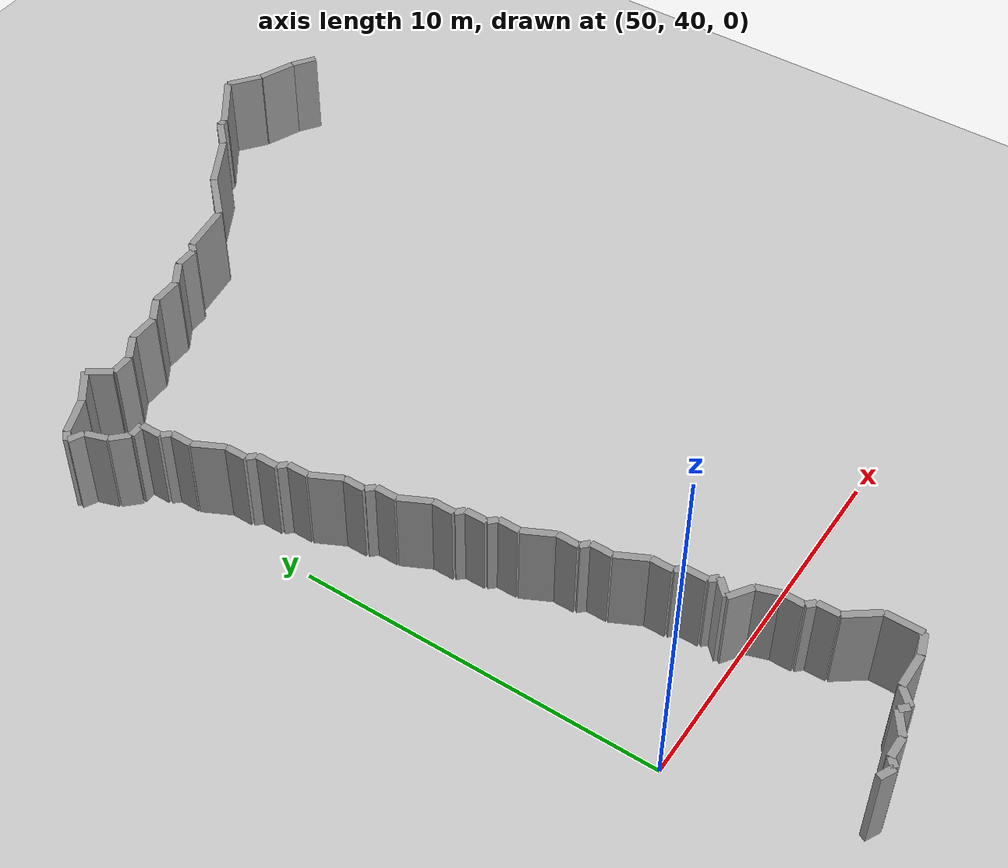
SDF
<sdf version="1.4">
 <world name="1_wall">
  <model name="ground_plane">
   <static>1</static>
   <link name="link">
    <collision name="collision">
     <geometry><plane><normal>0 0 1</normal><size>1000 1000</size></plane></geometry>
     <surface><friction><ode><mu>100</mu><mu2>50</mu2></ode></friction></surface>
    </collision>
    <visual name="visual">
     <cast_shadows>0</cast_shadows>
     <geometry><plane><normal>0 0 1</normal><size>10000 10000</size></plane></geometry>
     <material>
      <script><uri>file://media/materials/scripts/gazebo.material</uri><name>Gazebo/Grey</name></script>
     </material>
    </visual>
    <velocity_decay><linear>0</linear><angular>0</angular></velocity_decay>
   </link>
  </model>
  <model name="Wall_208">
   <static>1</static>
   <link name="Wall_208">
    <collision name="Wall_Collision_208">
     <geometry><box><size>0.721110255093 0.2 2.5</size></box></geometry>
     <pose>0 0 1.25 0 -0 0</pose>
    </collision>
    <visual name="Wall_Visual_208">
     <pose>0 0 1.25 0 -0 0</pose>
     <geometry><box><size>0.721110255093 0.2 2.5</size></box></geometry>
     <material>
      <script><uri>file://media/materials/scripts/gazebo.material</uri><name>Gazebo/Grey</name></script>
     </material>
    </visual>
    <velocity_decay><linear>0</linear><angular>0</angular></velocity_decay>
    <pose>63.9 60.6 0 0 0 2.55359005004</pose>
   </link>
  </model>
  <model name="Wall_209">
   <static>1</static>
   <link name="Wall_209">
    <collision name="Wall_Collision_209">
     <geometry><box><size>1.07703296143 0.2 2.5</size></box></geometry>
     <pose>0 0 1.25 0 -0 0</pose>
    </collision>
    <visual name="Wall_Visual_209">
     <pose>0 0 1.25 0 -0 0</pose>
     <geometry><box><size>1.07703296143 0.2 2.5</size></box></geometry>
     <material>
      <script><uri>file://media/materials/scripts/gazebo.material</uri><name>Gazebo/Grey</name></script>
     </material>
    </visual>
    <velocity_decay><linear>0</linear><angular>0</angular></velocity_decay>
    <pose>63.1 61.0 0 0 0 2.76108627648</pose>
   </link>
  </model>
  <model name="Wall_210">
   <static>1</static>
   <link name="Wall_210">
    <collision name="Wall_Collision_210">
     <geometry><box><size>1.0 0.2 2.5</size></box></geometry>
     <pose>0 0 1.25 0 -0 0</pose>
    </collision>
    <visual name="Wall_Visual_210">
     <pose>0 0 1.25 0 -0 0</pose>
     <geometry><box><size>1.0 0.2 2.5</size></box></geometry>
     <material>
      <script><uri>file://media/materials/scripts/gazebo.material</uri><name>Gazebo/Grey</name></script>
     </material>
    </visual>
    <velocity_decay><linear>0</linear><angular>0</angular></velocity_decay>
    <pose>62.2 61.5 0 0 0 2.4980915448</pose>
   </link>
  </model>
  <model name="Wall_211">
   <static>1</static>
   <link name="Wall_211">
    <collision name="Wall_Collision_211">
     <geometry><box><size>1.72046505341 0.2 2.5</size></box></geometry>
     <pose>0 0 1.25 0 -0 0</pose>
    </collision>
    <visual name="Wall_Visual_211">
     <pose>0 0 1.25 0 -0 0</pose>
     <geometry><box><size>1.72046505341 0.2 2.5</size></box></geometry>
     <material>
      <script><uri>file://media/materials/scripts/gazebo.material</uri><name>Gazebo/Grey</name></script>
     </material>
    </visual>
    <velocity_decay><linear>0</linear><angular>0</angular></velocity_decay>
    <pose>61.1 61.3 0 0 0 -2.52134316761</pose>
   </link>
  </model>
  <model name="Wall_212">
   <static>1</static>
   <link name="Wall_212">
    <collision name="Wall_Collision_212">
     <geometry><box><size>0.2 0.2 2.5</size></box></geometry>
     <pose>0 0 1.25 0 -0 0</pose>
    </collision>
    <visual name="Wall_Visual_212">
     <pose>0 0 1.25 0 -0 0</pose>
     <geometry><box><size>0.2 0.2 2.5</size></box></geometry>
     <material>
      <script><uri>file://media/materials/scripts/gazebo.material</uri><name>Gazebo/Grey</name></script>
     </material>
    </visual>
    <velocity_decay><linear>0</linear><angular>0</angular></velocity_decay>
    <pose>60.3 60.8 0 0 0 3.14159265359</pose>
   </link>
  </model>
  <model name="Wall_213">
   <static>1</static>
   <link name="Wall_213">
    <collision name="Wall_Collision_213">
     <geometry><box><size>0.848528137424 0.2 2.5</size></box></geometry>
     <pose>0 0 1.25 0 -0 0</pose>
    </collision>
    <visual name="Wall_Visual_213">
     <pose>0 0 1.25 0 -0 0</pose>
     <geometry><box><size>0.848528137424 0.2 2.5</size></box></geometry>
     <material>
      <script><uri>file://media/materials/scripts/gazebo.material</uri><name>Gazebo/Grey</name></script>
     </material>
    </visual>
    <velocity_decay><linear>0</linear><angular>0</angular></velocity_decay>
    <pose>59.9 60.5 0 0 0 -2.35619449019</pose>
   </link>
  </model>
  <model name="Wall_214">
   <static>1</static>
   <link name="Wall_214">
    <collision name="Wall_Collision_214">
     <geometry><box><size>1.61245154966 0.2 2.5</size></box></geometry>
     <pose>0 0 1.25 0 -0 0</pose>
    </collision>
    <visual name="Wall_Visual_214">
     <pose>0 0 1.25 0 -0 0</pose>
     <geometry><box><size>1.61245154966 0.2 2.5</size></box></geometry>
     <material>
      <script><uri>file://media/materials/scripts/gazebo.material</uri><name>Gazebo/Grey</name></script>
     </material>
    </visual>
    <velocity_decay><linear>0</linear><angular>0</angular></velocity_decay>
    <pose>58.9 59.8 0 0 0 -2.62244653934</pose>
   </link>
  </model>
  <model name="Wall_215">
   <static>1</static>
   <link name="Wall_215">
    <collision name="Wall_Collision_215">
     <geometry><box><size>1.41421356237 0.2 2.5</size></box></geometry>
     <pose>0 0 1.25 0 -0 0</pose>
    </collision>
    <visual name="Wall_Visual_215">
     <pose>0 0 1.25 0 -0 0</pose>
     <geometry><box><size>1.41421356237 0.2 2.5</size></box></geometry>
     <material>
      <script><uri>file://media/materials/scripts/gazebo.material</uri><name>Gazebo/Grey</name></script>
     </material>
    </visual>
    <velocity_decay><linear>0</linear><angular>0</angular></velocity_decay>
    <pose>57.7 58.9 0 0 0 -2.35619449019</pose>
   </link>
  </model>
  <model name="Wall_216">
   <static>1</static>
   <link name="Wall_216">
    <collision name="Wall_Collision_216">
     <geometry><box><size>1.41421356237 0.2 2.5</size></box></geometry>
     <pose>0 0 1.25 0 -0 0</pose>
    </collision>
    <visual name="Wall_Visual_216">
     <pose>0 0 1.25 0 -0 0</pose>
     <geometry><box><size>1.41421356237 0.2 2.5</size></box></geometry>
     <material>
      <script><uri>file://media/materials/scripts/gazebo.material</uri><name>Gazebo/Grey</name></script>
     </material>
    </visual>
    <velocity_decay><linear>0</linear><angular>0</angular></velocity_decay>
    <pose>56.5 58.3 0 0 0 -2.99969559899</pose>
   </link>
  </model>
  <model name="Wall_217">
   <static>1</static>
   <link name="Wall_217">
    <collision name="Wall_Collision_217">
     <geometry><box><size>0.282842712475 0.2 2.5</size></box></geometry>
     <pose>0 0 1.25 0 -0 0</pose>
    </collision>
    <visual name="Wall_Visual_217">
     <pose>0 0 1.25 0 -0 0</pose>
     <geometry><box><size>0.282842712475 0.2 2.5</size></box></geometry>
     <material>
      <script><uri>file://media/materials/scripts/gazebo.material</uri><name>Gazebo/Grey</name></script>
     </material>
    </visual>
    <velocity_decay><linear>0</linear><angular>0</angular></velocity_decay>
    <pose>55.7 58.1 0 0 0 -2.35619449019</pose>
   </link>
  </model>
  <model name="Wall_218">
   <static>1</static>
   <link name="Wall_218">
    <collision name="Wall_Collision_218">
     <geometry><box><size>0.6 0.2 2.5</size></box></geometry>
     <pose>0 0 1.25 0 -0 0</pose>
    </collision>
    <visual name="Wall_Visual_218">
     <pose>0 0 1.25 0 -0 0</pose>
     <geometry><box><size>0.6 0.2 2.5</size></box></geometry>
     <material>
      <script><uri>file://media/materials/scripts/gazebo.material</uri><name>Gazebo/Grey</name></script>
     </material>
    </visual>
    <velocity_decay><linear>0</linear><angular>0</angular></velocity_decay>
    <pose>55.3 58.0 0 0 0 3.14159265359</pose>
   </link>
  </model>
  <model name="Wall_219">
   <static>1</static>
   <link name="Wall_219">
    <collision name="Wall_Collision_219">
     <geometry><box><size>0.721110255093 0.2 2.5</size></box></geometry>
     <pose>0 0 1.25 0 -0 0</pose>
    </collision>
    <visual name="Wall_Visual_219">
     <pose>0 0 1.25 0 -0 0</pose>
     <geometry><box><size>0.721110255093 0.2 2.5</size></box></geometry>
     <material>
      <script><uri>file://media/materials/scripts/gazebo.material</uri><name>Gazebo/Grey</name></script>
     </material>
    </visual>
    <velocity_decay><linear>0</linear><angular>0</angular></velocity_decay>
    <pose>54.7 57.8 0 0 0 -2.55359005004</pose>
   </link>
  </model>
  <model name="Wall_220">
   <static>1</static>
   <link name="Wall_220">
    <collision name="Wall_Collision_220">
     <geometry><box><size>0.8 0.2 2.5</size></box></geometry>
     <pose>0 0 1.25 0 -0 0</pose>
    </collision>
    <visual name="Wall_Visual_220">
     <pose>0 0 1.25 0 -0 0</pose>
     <geometry><box><size>0.8 0.2 2.5</size></box></geometry>
     <material>
      <script><uri>file://media/materials/scripts/gazebo.material</uri><name>Gazebo/Grey</name></script>
     </material>
    </visual>
    <velocity_decay><linear>0</linear><angular>0</angular></velocity_decay>
    <pose>54.0 57.6 0 0 0 3.14159265359</pose>
   </link>
  </model>
  <model name="Wall_221">
   <static>1</static>
   <link name="Wall_221">
    <collision name="Wall_Collision_221">
     <geometry><box><size>0.721110255093 0.2 2.5</size></box></geometry>
     <pose>0 0 1.25 0 -0 0</pose>
    </collision>
    <visual name="Wall_Visual_221">
     <pose>0 0 1.25 0 -0 0</pose>
     <geometry><box><size>0.721110255093 0.2 2.5</size></box></geometry>
     <material>
      <script><uri>file://media/materials/scripts/gazebo.material</uri><name>Gazebo/Grey</name></script>
     </material>
    </visual>
    <velocity_decay><linear>0</linear><angular>0</angular></velocity_decay>
    <pose>53.3 57.4 0 0 0 -2.55359005004</pose>
   </link>
  </model>
  <model name="Wall_222">
   <static>1</static>
   <link name="Wall_222">
    <collision name="Wall_Collision_222">
     <geometry><box><size>0.8 0.2 2.5</size></box></geometry>
     <pose>0 0 1.25 0 -0 0</pose>
    </collision>
    <visual name="Wall_Visual_222">
     <pose>0 0 1.25 0 -0 0</pose>
     <geometry><box><size>0.8 0.2 2.5</size></box></geometry>
     <material>
      <script><uri>file://media/materials/scripts/gazebo.material</uri><name>Gazebo/Grey</name></script>
     </material>
    </visual>
    <velocity_decay><linear>0</linear><angular>0</angular></velocity_decay>
    <pose>52.6 57.2 0 0 0 3.14159265359</pose>
   </link>
  </model>
  <model name="Wall_223">
   <static>1</static>
   <link name="Wall_223">
    <collision name="Wall_Collision_223">
     <geometry><box><size>0.721110255093 0.2 2.5</size></box></geometry>
     <pose>0 0 1.25 0 -0 0</pose>
    </collision>
    <visual name="Wall_Visual_223">
     <pose>0 0 1.25 0 -0 0</pose>
     <geometry><box><size>0.721110255093 0.2 2.5</size></box></geometry>
     <material>
      <script><uri>file://media/materials/scripts/gazebo.material</uri><name>Gazebo/Grey</name></script>
     </material>
    </visual>
    <velocity_decay><linear>0</linear><angular>0</angular></velocity_decay>
    <pose>51.9 57.0 0 0 0 -2.55359005004</pose>
   </link>
  </model>
  <model name="Wall_224">
   <static>1</static>
   <link name="Wall_224">
    <collision name="Wall_Collision_224">
     <geometry><box><size>0.6 0.2 2.5</size></box></geometry>
     <pose>0 0 1.25 0 -0 0</pose>
    </collision>
    <visual name="Wall_Visual_224">
     <pose>0 0 1.25 0 -0 0</pose>
     <geometry><box><size>0.6 0.2 2.5</size></box></geometry>
     <material>
      <script><uri>file://media/materials/scripts/gazebo.material</uri><name>Gazebo/Grey</name></script>
     </material>
    </visual>
    <velocity_decay><linear>0</linear><angular>0</angular></velocity_decay>
    <pose>51.3 56.8 0 0 0 3.14159265359</pose>
   </link>
  </model>
  <model name="Wall_225">
   <static>1</static>
   <link name="Wall_225">
    <collision name="Wall_Collision_225">
     <geometry><box><size>0.721110255093 0.2 2.5</size></box></geometry>
     <pose>0 0 1.25 0 -0 0</pose>
    </collision>
    <visual name="Wall_Visual_225">
     <pose>0 0 1.25 0 -0 0</pose>
     <geometry><box><size>0.721110255093 0.2 2.5</size></box></geometry>
     <material>
      <script><uri>file://media/materials/scripts/gazebo.material</uri><name>Gazebo/Grey</name></script>
     </material>
    </visual>
    <velocity_decay><linear>0</linear><angular>0</angular></velocity_decay>
    <pose>50.8 57.1 0 0 0 2.15879893034</pose>
   </link>
  </model>
  <model name="Wall_226">
   <static>1</static>
   <link name="Wall_226">
    <collision name="Wall_Collision_226">
     <geometry><box><size>1.0 0.2 2.5</size></box></geometry>
     <pose>0 0 1.25 0 -0 0</pose>
    </collision>
    <visual name="Wall_Visual_226">
     <pose>0 0 1.25 0 -0 0</pose>
     <geometry><box><size>1.0 0.2 2.5</size></box></geometry>
     <material>
      <script><uri>file://media/materials/scripts/gazebo.material</uri><name>Gazebo/Grey</name></script>
     </material>
    </visual>
    <velocity_decay><linear>0</linear><angular>0</angular></velocity_decay>
    <pose>50.2 57.1 0 0 0 -2.4980915448</pose>
   </link>
  </model>
  <model name="Wall_227">
   <static>1</static>
   <link name="Wall_227">
    <collision name="Wall_Collision_227">
     <geometry><box><size>1.07703296143 0.2 2.5</size></box></geometry>
     <pose>0 0 1.25 0 -0 0</pose>
    </collision>
    <visual name="Wall_Visual_227">
     <pose>0 0 1.25 0 -0 0</pose>
     <geometry><box><size>1.07703296143 0.2 2.5</size></box></geometry>
     <material>
      <script><uri>file://media/materials/scripts/gazebo.material</uri><name>Gazebo/Grey</name></script>
     </material>
    </visual>
    <velocity_decay><linear>0</linear><angular>0</angular></velocity_decay>
    <pose>49.3 56.6 0 0 0 -2.76108627648</pose>
   </link>
  </model>
  <model name="Wall_228">
   <static>1</static>
   <link name="Wall_228">
    <collision name="Wall_Collision_228">
     <geometry><box><size>0.282842712475 0.2 2.5</size></box></geometry>
     <pose>0 0 1.25 0 -0 0</pose>
    </collision>
    <visual name="Wall_Visual_228">
     <pose>0 0 1.25 0 -0 0</pose>
     <geometry><box><size>0.282842712475 0.2 2.5</size></box></geometry>
     <material>
      <script><uri>file://media/materials/scripts/gazebo.material</uri><name>Gazebo/Grey</name></script>
     </material>
    </visual>
    <velocity_decay><linear>0</linear><angular>0</angular></velocity_decay>
    <pose>48.7 56.3 0 0 0 -2.35619449019</pose>
   </link>
  </model>
  <model name="Wall_229">
   <static>1</static>
   <link name="Wall_229">
    <collision name="Wall_Collision_229">
     <geometry><box><size>0.4472135955 0.2 2.5</size></box></geometry>
     <pose>0 0 1.25 0 -0 0</pose>
    </collision>
    <visual name="Wall_Visual_229">
     <pose>0 0 1.25 0 -0 0</pose>
     <geometry><box><size>0.4472135955 0.2 2.5</size></box></geometry>
     <material>
      <script><uri>file://media/materials/scripts/gazebo.material</uri><name>Gazebo/Grey</name></script>
     </material>
    </visual>
    <velocity_decay><linear>0</linear><angular>0</angular></velocity_decay>
    <pose>48.8 56.1 0 0 0 -0.463647609001</pose>
   </link>
  </model>
  <model name="Wall_230">
   <static>1</static>
   <link name="Wall_230">
    <collision name="Wall_Collision_230">
     <geometry><box><size>0.632455532034 0.2 2.5</size></box></geometry>
     <pose>0 0 1.25 0 -0 0</pose>
    </collision>
    <visual name="Wall_Visual_230">
     <pose>0 0 1.25 0 -0 0</pose>
     <geometry><box><size>0.632455532034 0.2 2.5</size></box></geometry>
     <material>
      <script><uri>file://media/materials/scripts/gazebo.material</uri><name>Gazebo/Grey</name></script>
     </material>
    </visual>
    <velocity_decay><linear>0</linear><angular>0</angular></velocity_decay>
    <pose>49.1 55.7 0 0 0 -1.2490457724</pose>
   </link>
  </model>
  <model name="Wall_231">
   <static>1</static>
   <link name="Wall_231">
    <collision name="Wall_Collision_231">
     <geometry><box><size>0.565685424949 0.2 2.5</size></box></geometry>
     <pose>0 0 1.25 0 -0 0</pose>
    </collision>
    <visual name="Wall_Visual_231">
     <pose>0 0 1.25 0 -0 0</pose>
     <geometry><box><size>0.565685424949 0.2 2.5</size></box></geometry>
     <material>
      <script><uri>file://media/materials/scripts/gazebo.material</uri><name>Gazebo/Grey</name></script>
     </material>
    </visual>
    <velocity_decay><linear>0</linear><angular>0</angular></velocity_decay>
    <pose>49.4 55.2 0 0 0 -0.785398163397</pose>
   </link>
  </model>
  <model name="Wall_232">
   <static>1</static>
   <link name="Wall_232">
    <collision name="Wall_Collision_232">
     <geometry><box><size>0.4 0.2 2.5</size></box></geometry>
     <pose>0 0 1.25 0 -0 0</pose>
    </collision>
    <visual name="Wall_Visual_232">
     <pose>0 0 1.25 0 -0 0</pose>
     <geometry><box><size>0.4 0.2 2.5</size></box></geometry>
     <material>
      <script><uri>file://media/materials/scripts/gazebo.material</uri><name>Gazebo/Grey</name></script>
     </material>
    </visual>
    <velocity_decay><linear>0</linear><angular>0</angular></velocity_decay>
    <pose>49.8 55.0 0 0 0 0.0</pose>
   </link>
  </model>
  <model name="Wall_233">
   <static>1</static>
   <link name="Wall_233">
    <collision name="Wall_Collision_233">
     <geometry><box><size>0.6 0.2 2.5</size></box></geometry>
     <pose>0 0 1.25 0 -0 0</pose>
    </collision>
    <visual name="Wall_Visual_233">
     <pose>0 0 1.25 0 -0 0</pose>
     <geometry><box><size>0.6 0.2 2.5</size></box></geometry>
     <material>
      <script><uri>file://media/materials/scripts/gazebo.material</uri><name>Gazebo/Grey</name></script>
     </material>
    </visual>
    <velocity_decay><linear>0</linear><angular>0</angular></velocity_decay>
    <pose>50.0 54.7 0 0 0 -1.57079632679</pose>
   </link>
  </model>
  <model name="Wall_234">
   <static>1</static>
   <link name="Wall_234">
    <collision name="Wall_Collision_234">
     <geometry><box><size>0.282842712475 0.2 2.5</size></box></geometry>
     <pose>0 0 1.25 0 -0 0</pose>
    </collision>
    <visual name="Wall_Visual_234">
     <pose>0 0 1.25 0 -0 0</pose>
     <geometry><box><size>0.282842712475 0.2 2.5</size></box></geometry>
     <material>
      <script><uri>file://media/materials/scripts/gazebo.material</uri><name>Gazebo/Grey</name></script>
     </material>
    </visual>
    <velocity_decay><linear>0</linear><angular>0</angular></velocity_decay>
    <pose>50.1 54.3 0 0 0 -0.785398163397</pose>
   </link>
  </model>
  <model name="Wall_235">
   <static>1</static>
   <link name="Wall_235">
    <collision name="Wall_Collision_235">
     <geometry><box><size>0.6 0.2 2.5</size></box></geometry>
     <pose>0 0 1.25 0 -0 0</pose>
    </collision>
    <visual name="Wall_Visual_235">
     <pose>0 0 1.25 0 -0 0</pose>
     <geometry><box><size>0.6 0.2 2.5</size></box></geometry>
     <material>
      <script><uri>file://media/materials/scripts/gazebo.material</uri><name>Gazebo/Grey</name></script>
     </material>
    </visual>
    <velocity_decay><linear>0</linear><angular>0</angular></velocity_decay>
    <pose>50.2 53.9 0 0 0 -1.57079632679</pose>
   </link>
  </model>
  <model name="Wall_236">
   <static>1</static>
   <link name="Wall_236">
    <collision name="Wall_Collision_236">
     <geometry><box><size>0.894427191 0.2 2.5</size></box></geometry>
     <pose>0 0 1.25 0 -0 0</pose>
    </collision>
    <visual name="Wall_Visual_236">
     <pose>0 0 1.25 0 -0 0</pose>
     <geometry><box><size>0.894427191 0.2 2.5</size></box></geometry>
     <material>
      <script><uri>file://media/materials/scripts/gazebo.material</uri><name>Gazebo/Grey</name></script>
     </material>
    </visual>
    <velocity_decay><linear>0</linear><angular>0</angular></velocity_decay>
    <pose>50.4 53.2 0 0 0 -1.10714871779</pose>
   </link>
  </model>
  <model name="Wall_237">
   <static>1</static>
   <link name="Wall_237">
    <collision name="Wall_Collision_237">
     <geometry><box><size>0.6 0.2 2.5</size></box></geometry>
     <pose>0 0 1.25 0 -0 0</pose>
    </collision>
    <visual name="Wall_Visual_237">
     <pose>0 0 1.25 0 -0 0</pose>
     <geometry><box><size>0.6 0.2 2.5</size></box></geometry>
     <material>
      <script><uri>file://media/materials/scripts/gazebo.material</uri><name>Gazebo/Grey</name></script>
     </material>
    </visual>
    <velocity_decay><linear>0</linear><angular>0</angular></velocity_decay>
    <pose>50.6 52.5 0 0 0 -1.57079632679</pose>
   </link>
  </model>
  <model name="Wall_238">
   <static>1</static>
   <link name="Wall_238">
    <collision name="Wall_Collision_238">
     <geometry><box><size>0.282842712475 0.2 2.5</size></box></geometry>
     <pose>0 0 1.25 0 -0 0</pose>
    </collision>
    <visual name="Wall_Visual_238">
     <pose>0 0 1.25 0 -0 0</pose>
     <geometry><box><size>0.282842712475 0.2 2.5</size></box></geometry>
     <material>
      <script><uri>file://media/materials/scripts/gazebo.material</uri><name>Gazebo/Grey</name></script>
     </material>
    </visual>
    <velocity_decay><linear>0</linear><angular>0</angular></velocity_decay>
    <pose>50.7 52.1 0 0 0 -0.785398163397</pose>
   </link>
  </model>
  <model name="Wall_239">
   <static>1</static>
   <link name="Wall_239">
    <collision name="Wall_Collision_239">
     <geometry><box><size>0.6 0.2 2.5</size></box></geometry>
     <pose>0 0 1.25 0 -0 0</pose>
    </collision>
    <visual name="Wall_Visual_239">
     <pose>0 0 1.25 0 -0 0</pose>
     <geometry><box><size>0.6 0.2 2.5</size></box></geometry>
     <material>
      <script><uri>file://media/materials/scripts/gazebo.material</uri><name>Gazebo/Grey</name></script>
     </material>
    </visual>
    <velocity_decay><linear>0</linear><angular>0</angular></velocity_decay>
    <pose>50.8 51.7 0 0 0 -1.57079632679</pose>
   </link>
  </model>
  <model name="Wall_240">
   <static>1</static>
   <link name="Wall_240">
    <collision name="Wall_Collision_240">
     <geometry><box><size>0.282842712475 0.2 2.5</size></box></geometry>
     <pose>0 0 1.25 0 -0 0</pose>
    </collision>
    <visual name="Wall_Visual_240">
     <pose>0 0 1.25 0 -0 0</pose>
     <geometry><box><size>0.282842712475 0.2 2.5</size></box></geometry>
     <material>
      <script><uri>file://media/materials/scripts/gazebo.material</uri><name>Gazebo/Grey</name></script>
     </material>
    </visual>
    <velocity_decay><linear>0</linear><angular>0</angular></velocity_decay>
    <pose>50.9 51.3 0 0 0 -0.785398163397</pose>
   </link>
  </model>
  <model name="Wall_241">
   <static>1</static>
   <link name="Wall_241">
    <collision name="Wall_Collision_241">
     <geometry><box><size>0.6 0.2 2.5</size></box></geometry>
     <pose>0 0 1.25 0 -0 0</pose>
    </collision>
    <visual name="Wall_Visual_241">
     <pose>0 0 1.25 0 -0 0</pose>
     <geometry><box><size>0.6 0.2 2.5</size></box></geometry>
     <material>
      <script><uri>file://media/materials/scripts/gazebo.material</uri><name>Gazebo/Grey</name></script>
     </material>
    </visual>
    <velocity_decay><linear>0</linear><angular>0</angular></velocity_decay>
    <pose>51.0 50.9 0 0 0 -1.57079632679</pose>
   </link>
  </model>
  <model name="Wall_242">
   <static>1</static>
   <link name="Wall_242">
    <collision name="Wall_Collision_242">
     <geometry><box><size>0.894427191 0.2 2.5</size></box></geometry>
     <pose>0 0 1.25 0 -0 0</pose>
    </collision>
    <visual name="Wall_Visual_242">
     <pose>0 0 1.25 0 -0 0</pose>
     <geometry><box><size>0.894427191 0.2 2.5</size></box></geometry>
     <material>
      <script><uri>file://media/materials/scripts/gazebo.material</uri><name>Gazebo/Grey</name></script>
     </material>
    </visual>
    <velocity_decay><linear>0</linear><angular>0</angular></velocity_decay>
    <pose>51.2 50.2 0 0 0 -1.10714871779</pose>
   </link>
  </model>
  <model name="Wall_243">
   <static>1</static>
   <link name="Wall_243">
    <collision name="Wall_Collision_243">
     <geometry><box><size>0.6 0.2 2.5</size></box></geometry>
     <pose>0 0 1.25 0 -0 0</pose>
    </collision>
    <visual name="Wall_Visual_243">
     <pose>0 0 1.25 0 -0 0</pose>
     <geometry><box><size>0.6 0.2 2.5</size></box></geometry>
     <material>
      <script><uri>file://media/materials/scripts/gazebo.material</uri><name>Gazebo/Grey</name></script>
     </material>
    </visual>
    <velocity_decay><linear>0</linear><angular>0</angular></velocity_decay>
    <pose>51.4 49.5 0 0 0 -1.57079632679</pose>
   </link>
  </model>
  <model name="Wall_244">
   <static>1</static>
   <link name="Wall_244">
    <collision name="Wall_Collision_244">
     <geometry><box><size>0.282842712475 0.2 2.5</size></box></geometry>
     <pose>0 0 1.25 0 -0 0</pose>
    </collision>
    <visual name="Wall_Visual_244">
     <pose>0 0 1.25 0 -0 0</pose>
     <geometry><box><size>0.282842712475 0.2 2.5</size></box></geometry>
     <material>
      <script><uri>file://media/materials/scripts/gazebo.material</uri><name>Gazebo/Grey</name></script>
     </material>
    </visual>
    <velocity_decay><linear>0</linear><angular>0</angular></velocity_decay>
    <pose>51.5 49.1 0 0 0 -0.785398163397</pose>
   </link>
  </model>
  <model name="Wall_245">
   <static>1</static>
   <link name="Wall_245">
    <collision name="Wall_Collision_245">
     <geometry><box><size>0.6 0.2 2.5</size></box></geometry>
     <pose>0 0 1.25 0 -0 0</pose>
    </collision>
    <visual name="Wall_Visual_245">
     <pose>0 0 1.25 0 -0 0</pose>
     <geometry><box><size>0.6 0.2 2.5</size></box></geometry>
     <material>
      <script><uri>file://media/materials/scripts/gazebo.material</uri><name>Gazebo/Grey</name></script>
     </material>
    </visual>
    <velocity_decay><linear>0</linear><angular>0</angular></velocity_decay>
    <pose>51.6 48.7 0 0 0 -1.57079632679</pose>
   </link>
  </model>
  <model name="Wall_246">
   <static>1</static>
   <link name="Wall_246">
    <collision name="Wall_Collision_246">
     <geometry><box><size>0.894427191 0.2 2.5</size></box></geometry>
     <pose>0 0 1.25 0 -0 0</pose>
    </collision>
    <visual name="Wall_Visual_246">
     <pose>0 0 1.25 0 -0 0</pose>
     <geometry><box><size>0.894427191 0.2 2.5</size></box></geometry>
     <material>
      <script><uri>file://media/materials/scripts/gazebo.material</uri><name>Gazebo/Grey</name></script>
     </material>
    </visual>
    <velocity_decay><linear>0</linear><angular>0</angular></velocity_decay>
    <pose>51.8 48.0 0 0 0 -1.10714871779</pose>
   </link>
  </model>
  <model name="Wall_247">
   <static>1</static>
   <link name="Wall_247">
    <collision name="Wall_Collision_247">
     <geometry><box><size>0.6 0.2 2.5</size></box></geometry>
     <pose>0 0 1.25 0 -0 0</pose>
    </collision>
    <visual name="Wall_Visual_247">
     <pose>0 0 1.25 0 -0 0</pose>
     <geometry><box><size>0.6 0.2 2.5</size></box></geometry>
     <material>
      <script><uri>file://media/materials/scripts/gazebo.material</uri><name>Gazebo/Grey</name></script>
     </material>
    </visual>
    <velocity_decay><linear>0</linear><angular>0</angular></velocity_decay>
    <pose>52.0 47.3 0 0 0 -1.57079632679</pose>
   </link>
  </model>
  <model name="Wall_248">
   <static>1</static>
   <link name="Wall_248">
    <collision name="Wall_Collision_248">
     <geometry><box><size>0.282842712475 0.2 2.5</size></box></geometry>
     <pose>0 0 1.25 0 -0 0</pose>
    </collision>
    <visual name="Wall_Visual_248">
     <pose>0 0 1.25 0 -0 0</pose>
     <geometry><box><size>0.282842712475 0.2 2.5</size></box></geometry>
     <material>
      <script><uri>file://media/materials/scripts/gazebo.material</uri><name>Gazebo/Grey</name></script>
     </material>
    </visual>
    <velocity_decay><linear>0</linear><angular>0</angular></velocity_decay>
    <pose>52.1 46.9 0 0 0 -0.785398163397</pose>
   </link>
  </model>
  <model name="Wall_249">
   <static>1</static>
   <link name="Wall_249">
    <collision name="Wall_Collision_249">
     <geometry><box><size>0.6 0.2 2.5</size></box></geometry>
     <pose>0 0 1.25 0 -0 0</pose>
    </collision>
    <visual name="Wall_Visual_249">
     <pose>0 0 1.25 0 -0 0</pose>
     <geometry><box><size>0.6 0.2 2.5</size></box></geometry>
     <material>
      <script><uri>file://media/materials/scripts/gazebo.material</uri><name>Gazebo/Grey</name></script>
     </material>
    </visual>
    <velocity_decay><linear>0</linear><angular>0</angular></velocity_decay>
    <pose>52.2 46.5 0 0 0 -1.57079632679</pose>
   </link>
  </model>
  <model name="Wall_250">
   <static>1</static>
   <link name="Wall_250">
    <collision name="Wall_Collision_250">
     <geometry><box><size>0.282842712475 0.2 2.5</size></box></geometry>
     <pose>0 0 1.25 0 -0 0</pose>
    </collision>
    <visual name="Wall_Visual_250">
     <pose>0 0 1.25 0 -0 0</pose>
     <geometry><box><size>0.282842712475 0.2 2.5</size></box></geometry>
     <material>
      <script><uri>file://media/materials/scripts/gazebo.material</uri><name>Gazebo/Grey</name></script>
     </material>
    </visual>
    <velocity_decay><linear>0</linear><angular>0</angular></velocity_decay>
    <pose>52.3 46.1 0 0 0 -0.785398163397</pose>
   </link>
  </model>
  <model name="Wall_251">
   <static>1</static>
   <link name="Wall_251">
    <collision name="Wall_Collision_251">
     <geometry><box><size>0.6 0.2 2.5</size></box></geometry>
     <pose>0 0 1.25 0 -0 0</pose>
    </collision>
    <visual name="Wall_Visual_251">
     <pose>0 0 1.25 0 -0 0</pose>
     <geometry><box><size>0.6 0.2 2.5</size></box></geometry>
     <material>
      <script><uri>file://media/materials/scripts/gazebo.material</uri><name>Gazebo/Grey</name></script>
     </material>
    </visual>
    <velocity_decay><linear>0</linear><angular>0</angular></velocity_decay>
    <pose>52.4 45.7 0 0 0 -1.57079632679</pose>
   </link>
  </model>
  <model name="Wall_252">
   <static>1</static>
   <link name="Wall_252">
    <collision name="Wall_Collision_252">
     <geometry><box><size>0.894427191 0.2 2.5</size></box></geometry>
     <pose>0 0 1.25 0 -0 0</pose>
    </collision>
    <visual name="Wall_Visual_252">
     <pose>0 0 1.25 0 -0 0</pose>
     <geometry><box><size>0.894427191 0.2 2.5</size></box></geometry>
     <material>
      <script><uri>file://media/materials/scripts/gazebo.material</uri><name>Gazebo/Grey</name></script>
     </material>
    </visual>
    <velocity_decay><linear>0</linear><angular>0</angular></velocity_decay>
    <pose>52.6 45.0 0 0 0 -1.10714871779</pose>
   </link>
  </model>
  <model name="Wall_253">
   <static>1</static>
   <link name="Wall_253">
    <collision name="Wall_Collision_253">
     <geometry><box><size>0.6 0.2 2.5</size></box></geometry>
     <pose>0 0 1.25 0 -0 0</pose>
    </collision>
    <visual name="Wall_Visual_253">
     <pose>0 0 1.25 0 -0 0</pose>
     <geometry><box><size>0.6 0.2 2.5</size></box></geometry>
     <material>
      <script><uri>file://media/materials/scripts/gazebo.material</uri><name>Gazebo/Grey</name></script>
     </material>
    </visual>
    <velocity_decay><linear>0</linear><angular>0</angular></velocity_decay>
    <pose>52.8 44.3 0 0 0 -1.57079632679</pose>
   </link>
  </model>
  <model name="Wall_254">
   <static>1</static>
   <link name="Wall_254">
    <collision name="Wall_Collision_254">
     <geometry><box><size>0.282842712475 0.2 2.5</size></box></geometry>
     <pose>0 0 1.25 0 -0 0</pose>
    </collision>
    <visual name="Wall_Visual_254">
     <pose>0 0 1.25 0 -0 0</pose>
     <geometry><box><size>0.282842712475 0.2 2.5</size></box></geometry>
     <material>
      <script><uri>file://media/materials/scripts/gazebo.material</uri><name>Gazebo/Grey</name></script>
     </material>
    </visual>
    <velocity_decay><linear>0</linear><angular>0</angular></velocity_decay>
    <pose>52.9 43.9 0 0 0 -0.785398163397</pose>
   </link>
  </model>
  <model name="Wall_255">
   <static>1</static>
   <link name="Wall_255">
    <collision name="Wall_Collision_255">
     <geometry><box><size>0.6 0.2 2.5</size></box></geometry>
     <pose>0 0 1.25 0 -0 0</pose>
    </collision>
    <visual name="Wall_Visual_255">
     <pose>0 0 1.25 0 -0 0</pose>
     <geometry><box><size>0.6 0.2 2.5</size></box></geometry>
     <material>
      <script><uri>file://media/materials/scripts/gazebo.material</uri><name>Gazebo/Grey</name></script>
     </material>
    </visual>
    <velocity_decay><linear>0</linear><angular>0</angular></velocity_decay>
    <pose>53.0 43.5 0 0 0 -1.57079632679</pose>
   </link>
  </model>
  <model name="Wall_256">
   <static>1</static>
   <link name="Wall_256">
    <collision name="Wall_Collision_256">
     <geometry><box><size>0.894427191 0.2 2.5</size></box></geometry>
     <pose>0 0 1.25 0 -0 0</pose>
    </collision>
    <visual name="Wall_Visual_256">
     <pose>0 0 1.25 0 -0 0</pose>
     <geometry><box><size>0.894427191 0.2 2.5</size></box></geometry>
     <material>
      <script><uri>file://media/materials/scripts/gazebo.material</uri><name>Gazebo/Grey</name></script>
     </material>
    </visual>
    <velocity_decay><linear>0</linear><angular>0</angular></velocity_decay>
    <pose>53.2 42.8 0 0 0 -1.10714871779</pose>
   </link>
  </model>
  <model name="Wall_257">
   <static>1</static>
   <link name="Wall_257">
    <collision name="Wall_Collision_257">
     <geometry><box><size>0.6 0.2 2.5</size></box></geometry>
     <pose>0 0 1.25 0 -0 0</pose>
    </collision>
    <visual name="Wall_Visual_257">
     <pose>0 0 1.25 0 -0 0</pose>
     <geometry><box><size>0.6 0.2 2.5</size></box></geometry>
     <material>
      <script><uri>file://media/materials/scripts/gazebo.material</uri><name>Gazebo/Grey</name></script>
     </material>
    </visual>
    <velocity_decay><linear>0</linear><angular>0</angular></velocity_decay>
    <pose>53.4 42.1 0 0 0 -1.57079632679</pose>
   </link>
  </model>
  <model name="Wall_258">
   <static>1</static>
   <link name="Wall_258">
    <collision name="Wall_Collision_258">
     <geometry><box><size>0.282842712475 0.2 2.5</size></box></geometry>
     <pose>0 0 1.25 0 -0 0</pose>
    </collision>
    <visual name="Wall_Visual_258">
     <pose>0 0 1.25 0 -0 0</pose>
     <geometry><box><size>0.282842712475 0.2 2.5</size></box></geometry>
     <material>
      <script><uri>file://media/materials/scripts/gazebo.material</uri><name>Gazebo/Grey</name></script>
     </material>
    </visual>
    <velocity_decay><linear>0</linear><angular>0</angular></velocity_decay>
    <pose>53.5 41.7 0 0 0 -0.785398163397</pose>
   </link>
  </model>
  <model name="Wall_259">
   <static>1</static>
   <link name="Wall_259">
    <collision name="Wall_Collision_259">
     <geometry><box><size>0.6 0.2 2.5</size></box></geometry>
     <pose>0 0 1.25 0 -0 0</pose>
    </collision>
    <visual name="Wall_Visual_259">
     <pose>0 0 1.25 0 -0 0</pose>
     <geometry><box><size>0.6 0.2 2.5</size></box></geometry>
     <material>
      <script><uri>file://media/materials/scripts/gazebo.material</uri><name>Gazebo/Grey</name></script>
     </material>
    </visual>
    <velocity_decay><linear>0</linear><angular>0</angular></velocity_decay>
    <pose>53.6 41.3 0 0 0 -1.57079632679</pose>
   </link>
  </model>
  <model name="Wall_260">
   <static>1</static>
   <link name="Wall_260">
    <collision name="Wall_Collision_260">
     <geometry><box><size>0.282842712475 0.2 2.5</size></box></geometry>
     <pose>0 0 1.25 0 -0 0</pose>
    </collision>
    <visual name="Wall_Visual_260">
     <pose>0 0 1.25 0 -0 0</pose>
     <geometry><box><size>0.282842712475 0.2 2.5</size></box></geometry>
     <material>
      <script><uri>file://media/materials/scripts/gazebo.material</uri><name>Gazebo/Grey</name></script>
     </material>
    </visual>
    <velocity_decay><linear>0</linear><angular>0</angular></velocity_decay>
    <pose>53.7 40.9 0 0 0 -0.785398163397</pose>
   </link>
  </model>
  <model name="Wall_261">
   <static>1</static>
   <link name="Wall_261">
    <collision name="Wall_Collision_261">
     <geometry><box><size>0.565685424949 0.2 2.5</size></box></geometry>
     <pose>0 0 1.25 0 -0 0</pose>
    </collision>
    <visual name="Wall_Visual_261">
     <pose>0 0 1.25 0 -0 0</pose>
     <geometry><box><size>0.565685424949 0.2 2.5</size></box></geometry>
     <material>
      <script><uri>file://media/materials/scripts/gazebo.material</uri><name>Gazebo/Grey</name></script>
     </material>
    </visual>
    <velocity_decay><linear>0</linear><angular>0</angular></velocity_decay>
    <pose>53.6 40.6 0 0 0 -2.35619449019</pose>
   </link>
  </model>
  <model name="Wall_262">
   <static>1</static>
   <link name="Wall_262">
    <collision name="Wall_Collision_262">
     <geometry><box><size>0.721110255093 0.2 2.5</size></box></geometry>
     <pose>0 0 1.25 0 -0 0</pose>
    </collision>
    <visual name="Wall_Visual_262">
     <pose>0 0 1.25 0 -0 0</pose>
     <geometry><box><size>0.721110255093 0.2 2.5</size></box></geometry>
     <material>
      <script><uri>file://media/materials/scripts/gazebo.material</uri><name>Gazebo/Grey</name></script>
     </material>
    </visual>
    <velocity_decay><linear>0</linear><angular>0</angular></velocity_decay>
    <pose>53.7 40.2 0 0 0 -0.588002603548</pose>
   </link>
  </model>
  <model name="Wall_263">
   <static>1</static>
   <link name="Wall_263">
    <collision name="Wall_Collision_263">
     <geometry><box><size>0.632455532034 0.2 2.5</size></box></geometry>
     <pose>0 0 1.25 0 -0 0</pose>
    </collision>
    <visual name="Wall_Visual_263">
     <pose>0 0 1.25 0 -0 0</pose>
     <geometry><box><size>0.632455532034 0.2 2.5</size></box></geometry>
     <material>
      <script><uri>file://media/materials/scripts/gazebo.material</uri><name>Gazebo/Grey</name></script>
     </material>
    </visual>
    <velocity_decay><linear>0</linear><angular>0</angular></velocity_decay>
    <pose>54.1 39.7 0 0 0 -1.2490457724</pose>
   </link>
  </model>
  <model name="Wall_264">
   <static>1</static>
   <link name="Wall_264">
    <collision name="Wall_Collision_264">
     <geometry><box><size>0.6 0.2 2.5</size></box></geometry>
     <pose>0 0 1.25 0 -0 0</pose>
    </collision>
    <visual name="Wall_Visual_264">
     <pose>0 0 1.25 0 -0 0</pose>
     <geometry><box><size>0.6 0.2 2.5</size></box></geometry>
     <material>
      <script><uri>file://media/materials/scripts/gazebo.material</uri><name>Gazebo/Grey</name></script>
     </material>
    </visual>
    <velocity_decay><linear>0</linear><angular>0</angular></velocity_decay>
    <pose>54.2 39.1 0 0 0 -1.57079632679</pose>
   </link>
  </model>
  <model name="Wall_265">
   <static>1</static>
   <link name="Wall_265">
    <collision name="Wall_Collision_265">
     <geometry><box><size>0.282842712475 0.2 2.5</size></box></geometry>
     <pose>0 0 1.25 0 -0 0</pose>
    </collision>
    <visual name="Wall_Visual_265">
     <pose>0 0 1.25 0 -0 0</pose>
     <geometry><box><size>0.282842712475 0.2 2.5</size></box></geometry>
     <material>
      <script><uri>file://media/materials/scripts/gazebo.material</uri><name>Gazebo/Grey</name></script>
     </material>
    </visual>
    <velocity_decay><linear>0</linear><angular>0</angular></velocity_decay>
    <pose>54.3 38.7 0 0 0 -0.785398163397</pose>
   </link>
  </model>
  <model name="Wall_266">
   <static>1</static>
   <link name="Wall_266">
    <collision name="Wall_Collision_266">
     <geometry><box><size>0.6 0.2 2.5</size></box></geometry>
     <pose>0 0 1.25 0 -0 0</pose>
    </collision>
    <visual name="Wall_Visual_266">
     <pose>0 0 1.25 0 -0 0</pose>
     <geometry><box><size>0.6 0.2 2.5</size></box></geometry>
     <material>
      <script><uri>file://media/materials/scripts/gazebo.material</uri><name>Gazebo/Grey</name></script>
     </material>
    </visual>
    <velocity_decay><linear>0</linear><angular>0</angular></velocity_decay>
    <pose>54.4 38.3 0 0 0 -1.57079632679</pose>
   </link>
  </model>
  <model name="Wall_267">
   <static>1</static>
   <link name="Wall_267">
    <collision name="Wall_Collision_267">
     <geometry><box><size>1.0 0.2 2.5</size></box></geometry>
     <pose>0 0 1.25 0 -0 0</pose>
    </collision>
    <visual name="Wall_Visual_267">
     <pose>0 0 1.25 0 -0 0</pose>
     <geometry><box><size>1.0 0.2 2.5</size></box></geometry>
     <material>
      <script><uri>file://media/materials/scripts/gazebo.material</uri><name>Gazebo/Grey</name></script>
     </material>
    </visual>
    <velocity_decay><linear>0</linear><angular>0</angular></velocity_decay>
    <pose>54.7 37.6 0 0 0 -0.927295218002</pose>
   </link>
  </model>
  <model name="Wall_268">
   <static>1</static>
   <link name="Wall_268">
    <collision name="Wall_Collision_268">
     <geometry><box><size>1.0 0.2 2.5</size></box></geometry>
     <pose>0 0 1.25 0 -0 0</pose>
    </collision>
    <visual name="Wall_Visual_268">
     <pose>0 0 1.25 0 -0 0</pose>
     <geometry><box><size>1.0 0.2 2.5</size></box></geometry>
     <material>
      <script><uri>file://media/materials/scripts/gazebo.material</uri><name>Gazebo/Grey</name></script>
     </material>
    </visual>
    <velocity_decay><linear>0</linear><angular>0</angular></velocity_decay>
    <pose>55.0 36.7 0 0 0 -1.57079632679</pose>
   </link>
  </model>
  <model name="Wall_269">
   <static>1</static>
   <link name="Wall_269">
    <collision name="Wall_Collision_269">
     <geometry><box><size>0.632455532034 0.2 2.5</size></box></geometry>
     <pose>0 0 1.25 0 -0 0</pose>
    </collision>
    <visual name="Wall_Visual_269">
     <pose>0 0 1.25 0 -0 0</pose>
     <geometry><box><size>0.632455532034 0.2 2.5</size></box></geometry>
     <material>
      <script><uri>file://media/materials/scripts/gazebo.material</uri><name>Gazebo/Grey</name></script>
     </material>
    </visual>
    <velocity_decay><linear>0</linear><angular>0</angular></velocity_decay>
    <pose>54.7 36.1 0 0 0 -2.81984209919</pose>
   </link>
  </model>
  <model name="Wall_270">
   <static>1</static>
   <link name="Wall_270">
    <collision name="Wall_Collision_270">
     <geometry><box><size>1.0 0.2 2.5</size></box></geometry>
     <pose>0 0 1.25 0 -0 0</pose>
    </collision>
    <visual name="Wall_Visual_270">
     <pose>0 0 1.25 0 -0 0</pose>
     <geometry><box><size>1.0 0.2 2.5</size></box></geometry>
     <material>
      <script><uri>file://media/materials/scripts/gazebo.material</uri><name>Gazebo/Grey</name></script>
     </material>
    </visual>
    <velocity_decay><linear>0</linear><angular>0</angular></velocity_decay>
    <pose>53.9 36.0 0 0 0 3.14159265359</pose>
   </link>
  </model>
  <model name="Wall_271">
   <static>1</static>
   <link name="Wall_271">
    <collision name="Wall_Collision_271">
     <geometry><box><size>0.565685424949 0.2 2.5</size></box></geometry>
     <pose>0 0 1.25 0 -0 0</pose>
    </collision>
    <visual name="Wall_Visual_271">
     <pose>0 0 1.25 0 -0 0</pose>
     <geometry><box><size>0.565685424949 0.2 2.5</size></box></geometry>
     <material>
      <script><uri>file://media/materials/scripts/gazebo.material</uri><name>Gazebo/Grey</name></script>
     </material>
    </visual>
    <velocity_decay><linear>0</linear><angular>0</angular></velocity_decay>
    <pose>53.2 35.8 0 0 0 -2.35619449019</pose>
   </link>
  </model>
  <model name="Wall_272">
   <static>1</static>
   <link name="Wall_272">
    <collision name="Wall_Collision_272">
     <geometry><box><size>0.282842712475 0.2 2.5</size></box></geometry>
     <pose>0 0 1.25 0 -0 0</pose>
    </collision>
    <visual name="Wall_Visual_272">
     <pose>0 0 1.25 0 -0 0</pose>
     <geometry><box><size>0.282842712475 0.2 2.5</size></box></geometry>
     <material>
      <script><uri>file://media/materials/scripts/gazebo.material</uri><name>Gazebo/Grey</name></script>
     </material>
    </visual>
    <velocity_decay><linear>0</linear><angular>0</angular></velocity_decay>
    <pose>52.9 35.7 0 0 0 2.35619449019</pose>
   </link>
  </model>
  <model name="Wall_273">
   <static>1</static>
   <link name="Wall_273">
    <collision name="Wall_Collision_273">
     <geometry><box><size>0.721110255093 0.2 2.5</size></box></geometry>
     <pose>0 0 1.25 0 -0 0</pose>
    </collision>
    <visual name="Wall_Visual_273">
     <pose>0 0 1.25 0 -0 0</pose>
     <geometry><box><size>0.721110255093 0.2 2.5</size></box></geometry>
     <material>
      <script><uri>file://media/materials/scripts/gazebo.material</uri><name>Gazebo/Grey</name></script>
     </material>
    </visual>
    <velocity_decay><linear>0</linear><angular>0</angular></velocity_decay>
    <pose>52.5 35.6 0 0 0 -2.55359005004</pose>
   </link>
  </model>
  <model name="Wall_274">
   <static>1</static>
   <link name="Wall_274">
    <collision name="Wall_Collision_274">
     <geometry><box><size>0.6 0.2 2.5</size></box></geometry>
     <pose>0 0 1.25 0 -0 0</pose>
    </collision>
    <visual name="Wall_Visual_274">
     <pose>0 0 1.25 0 -0 0</pose>
     <geometry><box><size>0.6 0.2 2.5</size></box></geometry>
     <material>
      <script><uri>file://media/materials/scripts/gazebo.material</uri><name>Gazebo/Grey</name></script>
     </material>
    </visual>
    <velocity_decay><linear>0</linear><angular>0</angular></velocity_decay>
    <pose>51.9 35.4 0 0 0 3.14159265359</pose>
   </link>
  </model>
  <model name="Wall_275">
   <static>1</static>
   <link name="Wall_275">
    <collision name="Wall_Collision_275">
     <geometry><box><size>0.282842712475 0.2 2.5</size></box></geometry>
     <pose>0 0 1.25 0 -0 0</pose>
    </collision>
    <visual name="Wall_Visual_275">
     <pose>0 0 1.25 0 -0 0</pose>
     <geometry><box><size>0.282842712475 0.2 2.5</size></box></geometry>
     <material>
      <script><uri>file://media/materials/scripts/gazebo.material</uri><name>Gazebo/Grey</name></script>
     </material>
    </visual>
    <velocity_decay><linear>0</linear><angular>0</angular></velocity_decay>
    <pose>51.5 35.3 0 0 0 -2.35619449019</pose>
   </link>
  </model>
  <model name="Wall_276">
   <static>1</static>
   <link name="Wall_276">
    <collision name="Wall_Collision_276">
     <geometry><box><size>0.4472135955 0.2 2.5</size></box></geometry>
     <pose>0 0 1.25 0 -0 0</pose>
    </collision>
    <visual name="Wall_Visual_276">
     <pose>0 0 1.25 0 -0 0</pose>
     <geometry><box><size>0.4472135955 0.2 2.5</size></box></geometry>
     <material>
      <script><uri>file://media/materials/scripts/gazebo.material</uri><name>Gazebo/Grey</name></script>
     </material>
    </visual>
    <velocity_decay><linear>0</linear><angular>0</angular></velocity_decay>
    <pose>51.2 35.3 0 0 0 2.67794504459</pose>
   </link>
  </model>
 </world>
</sdf>
